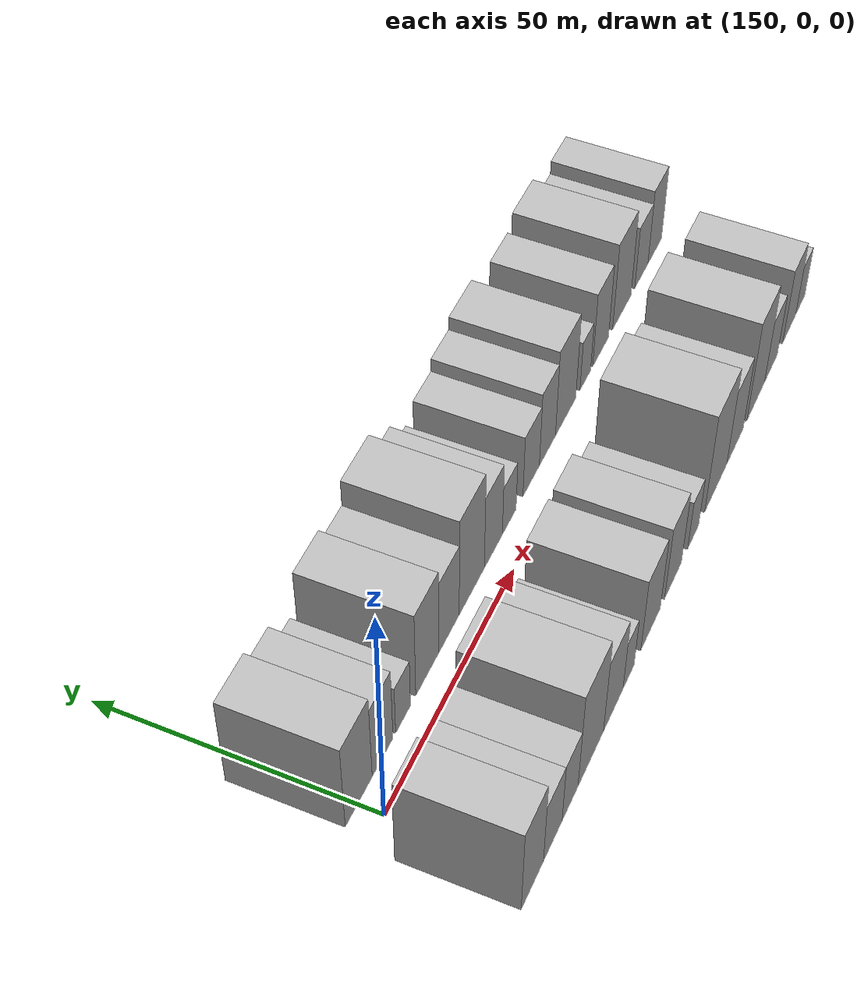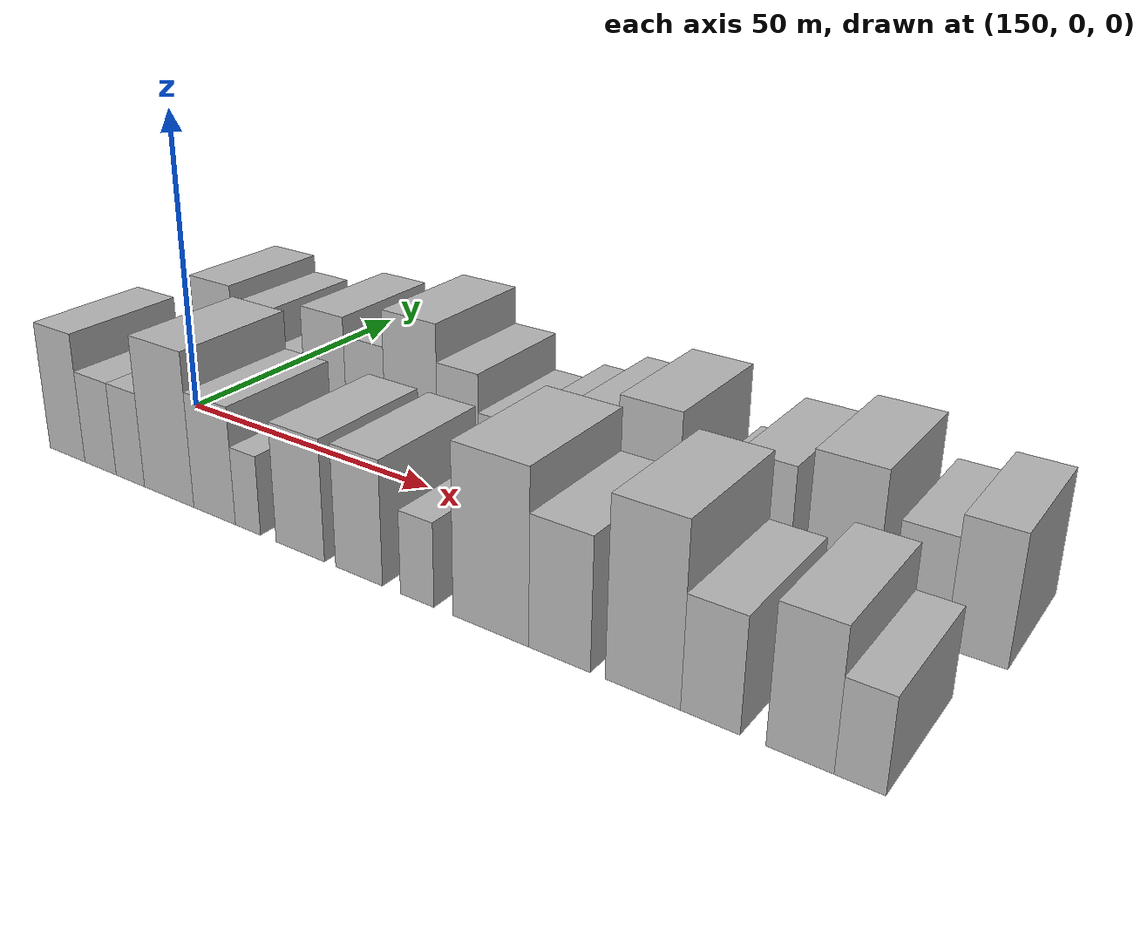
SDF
<sdf version="1.6">
 <world name="default">
  <model name="building_16">
   <static>1</static>
   <pose>150.5340 14.5000 0 0.000000 0.000000 1.570796</pose>
   <link name="link">
    <pose>0 0 10.50 0 0 0</pose>
    <collision name="collision"><geometry><box><size>20.0000 9.4110 21.0000</size></box></geometry></collision>
    <visual name="visual">
     <cast_shadows>0</cast_shadows>
     <geometry><box><size>20.0000 9.4110 21.0000</size></box></geometry>
     <material>
      <script>
       <uri>model://HANNAS_wall/materials/scripts</uri>
       <uri>model://HANNAS_wall/materials/textures</uri>
       <name>vrc/HANNAS_wall</name>
      </script>
     </material>
    </visual>
   </link>
  </model>
  <model name="building_17">
   <static>1</static>
   <pose>158.9657 14.5000 0 0.000000 0.000000 1.570796</pose>
   <link name="link">
    <pose>0 0 9.00 0 0 0</pose>
    <collision name="collision"><geometry><box><size>20.0000 7.4523 18.0000</size></box></geometry></collision>
    <visual name="visual">
     <cast_shadows>0</cast_shadows>
     <geometry><box><size>20.0000 7.4523 18.0000</size></box></geometry>
     <material>
      <script>
       <uri>model://HANNAS_wall/materials/scripts</uri>
       <uri>model://HANNAS_wall/materials/textures</uri>
       <name>vrc/HANNAS_wall</name>
      </script>
     </material>
    </visual>
   </link>
  </model>
  <model name="building_18">
   <static>1</static>
   <pose>166.4267 14.5000 0 0.000000 0.000000 1.570796</pose>
   <link name="link">
    <pose>0 0 6.00 0 0 0</pose>
    <collision name="collision"><geometry><box><size>20.0000 5.4697 12.0000</size></box></geometry></collision>
    <visual name="visual">
     <cast_shadows>0</cast_shadows>
     <geometry><box><size>20.0000 5.4697 12.0000</size></box></geometry>
     <material>
      <script>
       <uri>model://HANNAS_wall/materials/scripts</uri>
       <uri>model://HANNAS_wall/materials/textures</uri>
       <name>vrc/HANNAS_wall</name>
      </script>
     </material>
    </visual>
   </link>
  </model>
  <model name="building_19">
   <static>1</static>
   <pose>175.5995 14.5000 0 0.000000 0.000000 1.570796</pose>
   <link name="link">
    <pose>0 0 10.50 0 0 0</pose>
    <collision name="collision"><geometry><box><size>20.0000 8.8758 21.0000</size></box></geometry></collision>
    <visual name="visual">
     <cast_shadows>0</cast_shadows>
     <geometry><box><size>20.0000 8.8758 21.0000</size></box></geometry>
     <material>
      <script>
       <uri>model://HANNAS_wall/materials/scripts</uri>
       <uri>model://HANNAS_wall/materials/textures</uri>
       <name>vrc/HANNAS_wall</name>
      </script>
     </material>
    </visual>
   </link>
  </model>
  <model name="building_20">
   <static>1</static>
   <pose>184.0230 14.5000 0 0.000000 0.000000 1.570796</pose>
   <link name="link">
    <pose>0 0 9.00 0 0 0</pose>
    <collision name="collision"><geometry><box><size>20.0000 7.9713 18.0000</size></box></geometry></collision>
    <visual name="visual">
     <cast_shadows>0</cast_shadows>
     <geometry><box><size>20.0000 7.9713 18.0000</size></box></geometry>
     <material>
      <script>
       <uri>model://HANNAS_wall/materials/scripts</uri>
       <uri>model://HANNAS_wall/materials/textures</uri>
       <name>vrc/HANNAS_wall</name>
      </script>
     </material>
    </visual>
   </link>
  </model>
  <model name="building_21">
   <static>1</static>
   <pose>193.1325 14.5000 0 0.000000 0.000000 1.570796</pose>
   <link name="link">
    <pose>0 0 12.00 0 0 0</pose>
    <collision name="collision"><geometry><box><size>20.0000 10.2476 24.0000</size></box></geometry></collision>
    <visual name="visual">
     <cast_shadows>0</cast_shadows>
     <geometry><box><size>20.0000 10.2476 24.0000</size></box></geometry>
     <material>
      <script>
       <uri>model://HANNAS_wall/materials/scripts</uri>
       <uri>model://HANNAS_wall/materials/textures</uri>
       <name>vrc/HANNAS_wall</name>
      </script>
     </material>
    </visual>
   </link>
  </model>
  <model name="building_22">
   <static>1</static>
   <pose>202.0533 14.5000 0 0.000000 0.000000 1.570796</pose>
   <link name="link">
    <pose>0 0 9.00 0 0 0</pose>
    <collision name="collision"><geometry><box><size>20.0000 7.5940 18.0000</size></box></geometry></collision>
    <visual name="visual">
     <cast_shadows>0</cast_shadows>
     <geometry><box><size>20.0000 7.5940 18.0000</size></box></geometry>
     <material>
      <script>
       <uri>model://HANNAS_wall/materials/scripts</uri>
       <uri>model://HANNAS_wall/materials/textures</uri>
       <name>vrc/HANNAS_wall</name>
      </script>
     </material>
    </visual>
   </link>
  </model>
  <model name="building_23">
   <static>1</static>
   <pose>208.7998 14.5000 0 0.000000 0.000000 1.570796</pose>
   <link name="link">
    <pose>0 0 6.00 0 0 0</pose>
    <collision name="collision"><geometry><box><size>20.0000 5.8991 12.0000</size></box></geometry></collision>
    <visual name="visual">
     <cast_shadows>0</cast_shadows>
     <geometry><box><size>20.0000 5.8991 12.0000</size></box></geometry>
     <material>
      <script>
       <uri>model://HANNAS_wall/materials/scripts</uri>
       <uri>model://HANNAS_wall/materials/textures</uri>
       <name>vrc/HANNAS_wall</name>
      </script>
     </material>
    </visual>
   </link>
  </model>
  <model name="building_24">
   <static>1</static>
   <pose>218.3971 14.5000 0 0.000000 0.000000 1.570796</pose>
   <link name="link">
    <pose>0 0 7.50 0 0 0</pose>
    <collision name="collision"><geometry><box><size>20.0000 7.2955 15.0000</size></box></geometry></collision>
    <visual name="visual">
     <cast_shadows>0</cast_shadows>
     <geometry><box><size>20.0000 7.2955 15.0000</size></box></geometry>
     <material>
      <script>
       <uri>model://HANNAS_wall/materials/scripts</uri>
       <uri>model://HANNAS_wall/materials/textures</uri>
       <name>vrc/HANNAS_wall</name>
      </script>
     </material>
    </visual>
   </link>
  </model>
  <model name="building_25">
   <static>1</static>
   <pose>225.7242 14.5000 0 0.000000 0.000000 1.570796</pose>
   <link name="link">
    <pose>0 0 9.00 0 0 0</pose>
    <collision name="collision"><geometry><box><size>20.0000 7.3586 18.0000</size></box></geometry></collision>
    <visual name="visual">
     <cast_shadows>0</cast_shadows>
     <geometry><box><size>20.0000 7.3586 18.0000</size></box></geometry>
     <material>
      <script>
       <uri>model://HANNAS_wall/materials/scripts</uri>
       <uri>model://HANNAS_wall/materials/textures</uri>
       <name>vrc/HANNAS_wall</name>
      </script>
     </material>
    </visual>
   </link>
  </model>
  <model name="building_26">
   <static>1</static>
   <pose>234.1721 14.5000 0 0.000000 0.000000 1.570796</pose>
   <link name="link">
    <pose>0 0 10.50 0 0 0</pose>
    <collision name="collision"><geometry><box><size>20.0000 9.5372 21.0000</size></box></geometry></collision>
    <visual name="visual">
     <cast_shadows>0</cast_shadows>
     <geometry><box><size>20.0000 9.5372 21.0000</size></box></geometry>
     <material>
      <script>
       <uri>model://HANNAS_wall/materials/scripts</uri>
       <uri>model://HANNAS_wall/materials/textures</uri>
       <name>vrc/HANNAS_wall</name>
      </script>
     </material>
    </visual>
   </link>
  </model>
  <model name="building_27">
   <static>1</static>
   <pose>243.5140 14.5000 0 0.000000 0.000000 1.570796</pose>
   <link name="link">
    <pose>0 0 6.00 0 0 0</pose>
    <collision name="collision"><geometry><box><size>20.0000 5.1466 12.0000</size></box></geometry></collision>
    <visual name="visual">
     <cast_shadows>0</cast_shadows>
     <geometry><box><size>20.0000 5.1466 12.0000</size></box></geometry>
     <material>
      <script>
       <uri>model://HANNAS_wall/materials/scripts</uri>
       <uri>model://HANNAS_wall/materials/textures</uri>
       <name>vrc/HANNAS_wall</name>
      </script>
     </material>
    </visual>
   </link>
  </model>
  <model name="building_28">
   <static>1</static>
   <pose>251.0256 14.5000 0 0.000000 0.000000 1.570796</pose>
   <link name="link">
    <pose>0 0 9.00 0 0 0</pose>
    <collision name="collision"><geometry><box><size>20.0000 7.8765 18.0000</size></box></geometry></collision>
    <visual name="visual">
     <cast_shadows>0</cast_shadows>
     <geometry><box><size>20.0000 7.8765 18.0000</size></box></geometry>
     <material>
      <script>
       <uri>model://HANNAS_wall/materials/scripts</uri>
       <uri>model://HANNAS_wall/materials/textures</uri>
       <name>vrc/HANNAS_wall</name>
      </script>
     </material>
    </visual>
   </link>
  </model>
  <model name="building_29">
   <static>1</static>
   <pose>261.6673 14.5000 0 0.000000 0.000000 1.570796</pose>
   <link name="link">
    <pose>0 0 10.50 0 0 0</pose>
    <collision name="collision"><geometry><box><size>20.0000 9.4068 21.0000</size></box></geometry></collision>
    <visual name="visual">
     <cast_shadows>0</cast_shadows>
     <geometry><box><size>20.0000 9.4068 21.0000</size></box></geometry>
     <material>
      <script>
       <uri>model://HANNAS_wall/materials/scripts</uri>
       <uri>model://HANNAS_wall/materials/textures</uri>
       <name>vrc/HANNAS_wall</name>
      </script>
     </material>
    </visual>
   </link>
  </model>
  <model name="building_30">
   <static>1</static>
   <pose>271.8445 14.5000 0 0.000000 0.000000 1.570796</pose>
   <link name="link">
    <pose>0 0 7.50 0 0 0</pose>
    <collision name="collision"><geometry><box><size>20.0000 6.9476 15.0000</size></box></geometry></collision>
    <visual name="visual">
     <cast_shadows>0</cast_shadows>
     <geometry><box><size>20.0000 6.9476 15.0000</size></box></geometry>
     <material>
      <script>
       <uri>model://HANNAS_wall/materials/scripts</uri>
       <uri>model://HANNAS_wall/materials/textures</uri>
       <name>vrc/HANNAS_wall</name>
      </script>
     </material>
    </visual>
   </link>
  </model>
  <model name="building_31">
   <static>1</static>
   <pose>279.0057 14.5000 0 0.000000 0.000000 1.570796</pose>
   <link name="link">
    <pose>0 0 9.00 0 0 0</pose>
    <collision name="collision"><geometry><box><size>20.0000 7.3749 18.0000</size></box></geometry></collision>
    <visual name="visual">
     <cast_shadows>0</cast_shadows>
     <geometry><box><size>20.0000 7.3749 18.0000</size></box></geometry>
     <material>
      <script>
       <uri>model://HANNAS_wall/materials/scripts</uri>
       <uri>model://HANNAS_wall/materials/textures</uri>
       <name>vrc/HANNAS_wall</name>
      </script>
     </material>
    </visual>
   </link>
  </model>
  <model name="building_45">
   <static>1</static>
   <pose>148.0269 -14.5000 0 0.000000 0.000000 1.570796</pose>
   <link name="link">
    <pose>0 0 10.50 0 0 0</pose>
    <collision name="collision"><geometry><box><size>20.0000 8.5347 21.0000</size></box></geometry></collision>
    <visual name="visual">
     <cast_shadows>0</cast_shadows>
     <geometry><box><size>20.0000 8.5347 21.0000</size></box></geometry>
     <material>
      <script>
       <uri>model://HANNAS_wall/materials/scripts</uri>
       <uri>model://HANNAS_wall/materials/textures</uri>
       <name>vrc/HANNAS_wall</name>
      </script>
     </material>
    </visual>
   </link>
  </model>
  <model name="building_46">
   <static>1</static>
   <pose>155.9692 -14.5000 0 0.000000 0.000000 1.570796</pose>
   <link name="link">
    <pose>0 0 7.50 0 0 0</pose>
    <collision name="collision"><geometry><box><size>20.0000 7.3498 15.0000</size></box></geometry></collision>
    <visual name="visual">
     <cast_shadows>0</cast_shadows>
     <geometry><box><size>20.0000 7.3498 15.0000</size></box></geometry>
     <material>
      <script>
       <uri>model://HANNAS_wall/materials/scripts</uri>
       <uri>model://HANNAS_wall/materials/textures</uri>
       <name>vrc/HANNAS_wall</name>
      </script>
     </material>
    </visual>
   </link>
  </model>
  <model name="building_47">
   <static>1</static>
   <pose>162.8568 -14.5000 0 0.000000 0.000000 1.570796</pose>
   <link name="link">
    <pose>0 0 7.50 0 0 0</pose>
    <collision name="collision"><geometry><box><size>20.0000 6.4254 15.0000</size></box></geometry></collision>
    <visual name="visual">
     <cast_shadows>0</cast_shadows>
     <geometry><box><size>20.0000 6.4254 15.0000</size></box></geometry>
     <material>
      <script>
       <uri>model://HANNAS_wall/materials/scripts</uri>
       <uri>model://HANNAS_wall/materials/textures</uri>
       <name>vrc/HANNAS_wall</name>
      </script>
     </material>
    </visual>
   </link>
  </model>
  <model name="building_48">
   <static>1</static>
   <pose>171.4104 -14.5000 0 0.000000 0.000000 1.570796</pose>
   <link name="link">
    <pose>0 0 12.00 0 0 0</pose>
    <collision name="collision"><geometry><box><size>20.0000 10.6818 24.0000</size></box></geometry></collision>
    <visual name="visual">
     <cast_shadows>0</cast_shadows>
     <geometry><box><size>20.0000 10.6818 24.0000</size></box></geometry>
     <material>
      <script>
       <uri>model://HANNAS_wall/materials/scripts</uri>
       <uri>model://HANNAS_wall/materials/textures</uri>
       <name>vrc/HANNAS_wall</name>
      </script>
     </material>
    </visual>
   </link>
  </model>
  <model name="building_49">
   <static>1</static>
   <pose>180.9956 -14.5000 0 0.000000 0.000000 1.570796</pose>
   <link name="link">
    <pose>0 0 9.00 0 0 0</pose>
    <collision name="collision"><geometry><box><size>20.0000 8.4886 18.0000</size></box></geometry></collision>
    <visual name="visual">
     <cast_shadows>0</cast_shadows>
     <geometry><box><size>20.0000 8.4886 18.0000</size></box></geometry>
     <material>
      <script>
       <uri>model://HANNAS_wall/materials/scripts</uri>
       <uri>model://HANNAS_wall/materials/textures</uri>
       <name>vrc/HANNAS_wall</name>
      </script>
     </material>
    </visual>
   </link>
  </model>
  <model name="building_50">
   <static>1</static>
   <pose>187.7154 -14.5000 0 0.000000 0.000000 1.570796</pose>
   <link name="link">
    <pose>0 0 6.00 0 0 0</pose>
    <collision name="collision"><geometry><box><size>20.0000 4.9509 12.0000</size></box></geometry></collision>
    <visual name="visual">
     <cast_shadows>0</cast_shadows>
     <geometry><box><size>20.0000 4.9509 12.0000</size></box></geometry>
     <material>
      <script>
       <uri>model://HANNAS_wall/materials/scripts</uri>
       <uri>model://HANNAS_wall/materials/textures</uri>
       <name>vrc/HANNAS_wall</name>
      </script>
     </material>
    </visual>
   </link>
  </model>
  <model name="building_51">
   <static>1</static>
   <pose>197.6737 -14.5000 0 0.000000 0.000000 1.570796</pose>
   <link name="link">
    <pose>0 0 9.00 0 0 0</pose>
    <collision name="collision"><geometry><box><size>20.0000 8.9659 18.0000</size></box></geometry></collision>
    <visual name="visual">
     <cast_shadows>0</cast_shadows>
     <geometry><box><size>20.0000 8.9659 18.0000</size></box></geometry>
     <material>
      <script>
       <uri>model://HANNAS_wall/materials/scripts</uri>
       <uri>model://HANNAS_wall/materials/textures</uri>
       <name>vrc/HANNAS_wall</name>
      </script>
     </material>
    </visual>
   </link>
  </model>
  <model name="building_52">
   <static>1</static>
   <pose>208.2187 -14.5000 0 0.000000 0.000000 1.570796</pose>
   <link name="link">
    <pose>0 0 9.00 0 0 0</pose>
    <collision name="collision"><geometry><box><size>20.0000 8.1241 18.0000</size></box></geometry></collision>
    <visual name="visual">
     <cast_shadows>0</cast_shadows>
     <geometry><box><size>20.0000 8.1241 18.0000</size></box></geometry>
     <material>
      <script>
       <uri>model://HANNAS_wall/materials/scripts</uri>
       <uri>model://HANNAS_wall/materials/textures</uri>
       <name>vrc/HANNAS_wall</name>
      </script>
     </material>
    </visual>
   </link>
  </model>
  <model name="building_53">
   <static>1</static>
   <pose>218.0170 -14.5000 0 0.000000 0.000000 1.570796</pose>
   <link name="link">
    <pose>0 0 6.00 0 0 0</pose>
    <collision name="collision"><geometry><box><size>20.0000 5.4724 12.0000</size></box></geometry></collision>
    <visual name="visual">
     <cast_shadows>0</cast_shadows>
     <geometry><box><size>20.0000 5.4724 12.0000</size></box></geometry>
     <material>
      <script>
       <uri>model://HANNAS_wall/materials/scripts</uri>
       <uri>model://HANNAS_wall/materials/textures</uri>
       <name>vrc/HANNAS_wall</name>
      </script>
     </material>
    </visual>
   </link>
  </model>
  <model name="building_54">
   <static>1</static>
   <pose>229.4592 -14.5000 0 0.000000 0.000000 1.570796</pose>
   <link name="link">
    <pose>0 0 12.00 0 0 0</pose>
    <collision name="collision"><geometry><box><size>20.0000 11.4120 24.0000</size></box></geometry></collision>
    <visual name="visual">
     <cast_shadows>0</cast_shadows>
     <geometry><box><size>20.0000 11.4120 24.0000</size></box></geometry>
     <material>
      <script>
       <uri>model://HANNAS_wall/materials/scripts</uri>
       <uri>model://HANNAS_wall/materials/textures</uri>
       <name>vrc/HANNAS_wall</name>
      </script>
     </material>
    </visual>
   </link>
  </model>
  <model name="building_55">
   <static>1</static>
   <pose>239.5193 -14.5000 0 0.000000 0.000000 1.570796</pose>
   <link name="link">
    <pose>0 0 9.00 0 0 0</pose>
    <collision name="collision"><geometry><box><size>20.0000 8.7083 18.0000</size></box></geometry></collision>
    <visual name="visual">
     <cast_shadows>0</cast_shadows>
     <geometry><box><size>20.0000 8.7083 18.0000</size></box></geometry>
     <material>
      <script>
       <uri>model://HANNAS_wall/materials/scripts</uri>
       <uri>model://HANNAS_wall/materials/textures</uri>
       <name>vrc/HANNAS_wall</name>
      </script>
     </material>
    </visual>
   </link>
  </model>
  <model name="building_56">
   <static>1</static>
   <pose>250.7693 -14.5000 0 0.000000 0.000000 1.570796</pose>
   <link name="link">
    <pose>0 0 12.00 0 0 0</pose>
    <collision name="collision"><geometry><box><size>20.0000 9.7916 24.0000</size></box></geometry></collision>
    <visual name="visual">
     <cast_shadows>0</cast_shadows>
     <geometry><box><size>20.0000 9.7916 24.0000</size></box></geometry>
     <material>
      <script>
       <uri>model://HANNAS_wall/materials/scripts</uri>
       <uri>model://HANNAS_wall/materials/textures</uri>
       <name>vrc/HANNAS_wall</name>
      </script>
     </material>
    </visual>
   </link>
  </model>
  <model name="building_57">
   <static>1</static>
   <pose>259.3172 -14.5000 0 0.000000 0.000000 1.570796</pose>
   <link name="link">
    <pose>0 0 7.50 0 0 0</pose>
    <collision name="collision"><geometry><box><size>20.0000 7.3041 15.0000</size></box></geometry></collision>
    <visual name="visual">
     <cast_shadows>0</cast_shadows>
     <geometry><box><size>20.0000 7.3041 15.0000</size></box></geometry>
     <material>
      <script>
       <uri>model://HANNAS_wall/materials/scripts</uri>
       <uri>model://HANNAS_wall/materials/textures</uri>
       <name>vrc/HANNAS_wall</name>
      </script>
     </material>
    </visual>
   </link>
  </model>
  <model name="building_58">
   <static>1</static>
   <pose>269.8132 -14.5000 0 0.000000 0.000000 1.570796</pose>
   <link name="link">
    <pose>0 0 9.00 0 0 0</pose>
    <collision name="collision"><geometry><box><size>20.0000 7.6880 18.0000</size></box></geometry></collision>
    <visual name="visual">
     <cast_shadows>0</cast_shadows>
     <geometry><box><size>20.0000 7.6880 18.0000</size></box></geometry>
     <material>
      <script>
       <uri>model://HANNAS_wall/materials/scripts</uri>
       <uri>model://HANNAS_wall/materials/textures</uri>
       <name>vrc/HANNAS_wall</name>
      </script>
     </material>
    </visual>
   </link>
  </model>
  <model name="building_59">
   <static>1</static>
   <pose>276.4407 -14.5000 0 0.000000 0.000000 1.570796</pose>
   <link name="link">
    <pose>0 0 6.00 0 0 0</pose>
    <collision name="collision"><geometry><box><size>20.0000 5.5668 12.0000</size></box></geometry></collision>
    <visual name="visual">
     <cast_shadows>0</cast_shadows>
     <geometry><box><size>20.0000 5.5668 12.0000</size></box></geometry>
     <material>
      <script>
       <uri>model://HANNAS_wall/materials/scripts</uri>
       <uri>model://HANNAS_wall/materials/textures</uri>
       <name>vrc/HANNAS_wall</name>
      </script>
     </material>
    </visual>
   </link>
  </model>
 </world>
</sdf>
